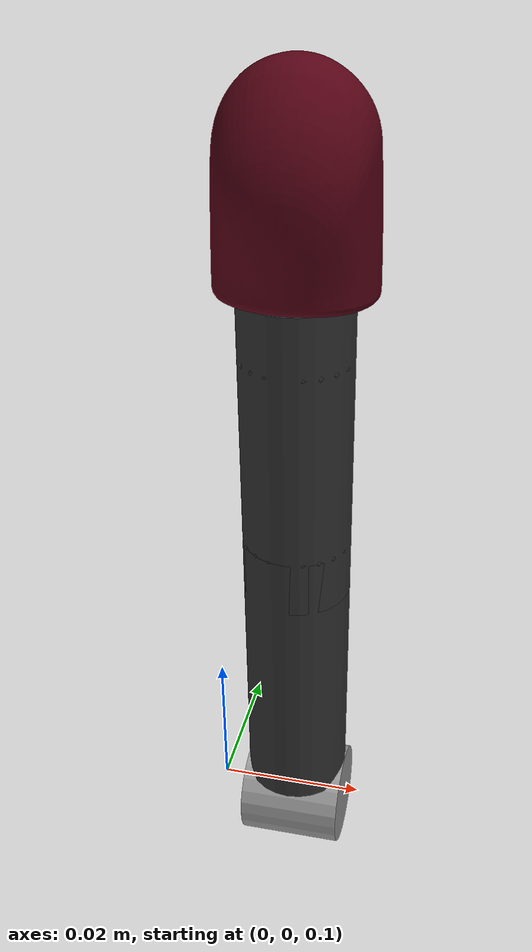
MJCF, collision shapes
<mujoco model="finger">
    <compiler angle="radian" meshdir="assets_sh_stl" autolimits="true" />

    <option cone="elliptic" impratio="10" />

    <extension>
        <plugin plugin="mujoco.sensor.touch_grid" />
    </extension>

    <default>
        <default class="right_hand">
            <mesh scale="0.001 0.001 0.001" />
            <joint axis="1 0 0" damping="0.05" armature="0.0002" frictionloss="0.01" />
            <position forcerange="-1 1" />

            <default class="thumb">
                <default class="thbase">
                    <joint axis="0 0 -1" range="-1.0472 1.0472" />
                    <position kp="0.4" ctrlrange="-1.0472 1.0472" forcerange="-3 3" />
                </default>
                <default class="thproximal">
                    <joint range="0 1.22173" />
                    <position ctrlrange="0 1.22173" forcerange="-2 2" />
                </default>
                <default class="thhub">
                    <joint range="-0.20944 0.20944" />
                    <position kp="0.5" ctrlrange="-0.20944 0.20944" />
                </default>
                <default class="thmiddle">
                    <joint axis="0 -1 0" range="-0.698132 0.698132" />
                    <position kp="1.5" ctrlrange="-0.698132 0.698132" />
                </default>
                <default class="thdistal">
                    <joint range="-0.261799 1.5708" />
                    <position ctrlrange="-0.261799 1.5708" />
                </default>
            </default>

            <default class="metacarpal">
                <joint axis="0.573576 0 0.819152" range="0 0.785398" />
                <position ctrlrange="0 0.785398" />
            </default>
            <default class="knuckle">
                <joint axis="0 -1 0" range="-0.349066 0.349066" />
                <position ctrlrange="-0.349066 0.349066" />
            </default>
            <default class="proximal">
                <joint range="-0.261799 1.5708" />
                <position ctrlrange="-0.261799 1.5708" />
            </default>
            <default class="middle_distal">
                <joint range="0 1.5708" />
                <position kp="0.5" ctrlrange="0 3.1415" />
            </default>

            <default class="plastic">
                <geom solimp="0.5 0.99 0.0001" solref="0.005 1" />
                <default class="plastic_visual">
                    <geom type="mesh" material="black" contype="0" conaffinity="0" group="2" />
                </default>
                <default class="plastic_collision">
                    <geom group="3" />
                </default>
            </default>
        </default>

    </default>

    <worldbody>
        <body name="rh_mfknuckle" pos="0.011 0 0.099">
            <inertial pos="0 0 0" quat="0.5 0.5 -0.5 0.5" mass="0.008"
                diaginertia="3.2e-07 2.6e-07 2.6e-07" />
            <geom pos="0 0 0.0005" quat="1 0 0 0" type="mesh" contype="0" conaffinity="0" group="1"
                density="0" rgba="0.6 0.6 0.6 1" mesh="f_knuckle_E3M5" />
            <geom size="0.007 0.007" quat="0.707105 0 0.707108 0" type="cylinder"
                rgba="0.6 0.6 0.6 1" contype="0" conaffinity="0" />
            <body name="rh_mfproximal">
                <inertial pos="0 0 0.0225" quat="0.707107 0 0 0.707107" mass="0.03"
                    diaginertia="1e-05 9.8e-06 1.8e-06" />
                <joint name="rh_MFJ3" pos="0 0 0" axis="1 0 0" range="-0.261799 1.5708"
                    actuatorfrcrange="-2 2" damping="0.1" />
                <geom type="mesh" contype="0" conaffinity="0" group="1" density="0"
                    rgba="0.2 0.2 0.2 1" mesh="f_proximal_E3M5" />
                <geom size="0.007 0.02" pos="0 0 0.025" type="cylinder" rgba="0.2 0.2 0.2 1" />
                <body name="rh_mfmiddle" pos="0 0 0.045">
                    <inertial pos="0 0 0.0125" quat="0.707107 0 0 0.707107" mass="0.017"
                        diaginertia="2.7e-06 2.6e-06 8.7e-07" />
                    <joint name="rh_MFJ2" pos="0 0 0" axis="1 0 0" range="0 1.5708"
                        actuatorfrcrange="-2 2" damping="0.1" />
                    <geom type="mesh" contype="0" conaffinity="0" group="1" density="0"
                        rgba="0.2 0.2 0.2 1" mesh="f_middle_E3M5" />
                        <!-- updated finger cylinder collision mesh -->
                    <geom size="0.007 0.02" pos="0 0 0.0125" type="cylinder" rgba="0.2 0.2 0.2 1" />
                    <geom size="0.007" rgba="0.2 0.2 0.2 1" />
                    <geom size="0.007" pos="0 0 0.025" rgba="0.2 0.2 0.2 1" />
                    <body name="rh_mfdistal" pos="0 0 0.025">
                        <inertial pos="0 0 0.0130769" quat="0.707107 0 0 0.707107" mass="0.013"
                            diaginertia="1.28092e-06 1.12092e-06 5.3e-07" />
                        <joint name="rh_MFJ1" pos="0 0 0" axis="1 0 0" range="0 1.5708"
                            actuatorfrcrange="-2 2" damping="0.1" />
                        <geom name="finger_tip" type="mesh" mesh="f_distal_mstXL" condim="6"
                            solref="0.00001 1"
                            rgba="0.3411764705882353 0.011764705882352941 0.08235294117647059 1" />
                    </body>
                </body>
            </body>
        </body>
    </worldbody>

    <asset>
        <material name="black" specular="0.5" shininess="0.25" rgba="0.16355 0.16355 0.16355 1" />
        <material
            name="gray" specular="0.0" shininess="0.25" rgba="0.80848 0.80848 0.80848 1" />
        <material
            name="metallic" specular="0" shininess="0.25" rgba="0.9 0.9 0.9 1" />

        <mesh name="forearm_E3M5" file="forearm_E3M5.stl" scale="0.001 0.001 0.001" />
        <mesh name="forearm_collision_E3M5" file="forearm_collision_E3M5.stl"
            scale="0.001 0.001 0.001" />
        <mesh name="wrist_E3M5" file="wrist_E3M5.stl" scale="0.001 0.001 0.001" />
        <mesh name="palm_E3M5" file="palm_E3M5.stl" scale="0.001 0.001 0.001" />
        <mesh name="f_knuckle_E3M5" file="f_knuckle_E3M5.stl" scale="0.001 0.001 0.001" />
        <mesh name="f_proximal_E3M5" file="f_proximal_E3M5.stl" scale="0.001 0.001 0.001" />
        <mesh name="f_middle_E3M5" file="f_middle_E3M5.stl" scale="0.001 0.001 0.001" />
        <mesh name="f_distal_mstXL" file="f_distal_mstXL.stl" scale="0.001 0.001 0.001" />
        <mesh name="lf_metacarpal_E3M5" file="lf_metacarpal_E3M5.stl" scale="0.001 0.001 0.001" />
        <mesh name="th_proximal_E3M5" file="th_proximal_E3M5.stl" scale="0.001 0.001 0.001" />
        <mesh name="th_middle_E3M5" file="th_middle_E3M5.stl" scale="0.001 0.001 0.001" />
        <mesh name="th_distal_mst" file="th_distal_mst.stl" scale="0.001 0.001 0.001" />

    </asset>

    <actuator>
        <position name="rh_A_MFJ3" joint="rh_MFJ3" class="proximal" />
        <position name="rh_A_MFJ2" joint="rh_MFJ2" class="proximal" />
        <position name="rh_A_MFJ1" joint="rh_MFJ1" class="proximal" />
    </actuator>

</mujoco>
